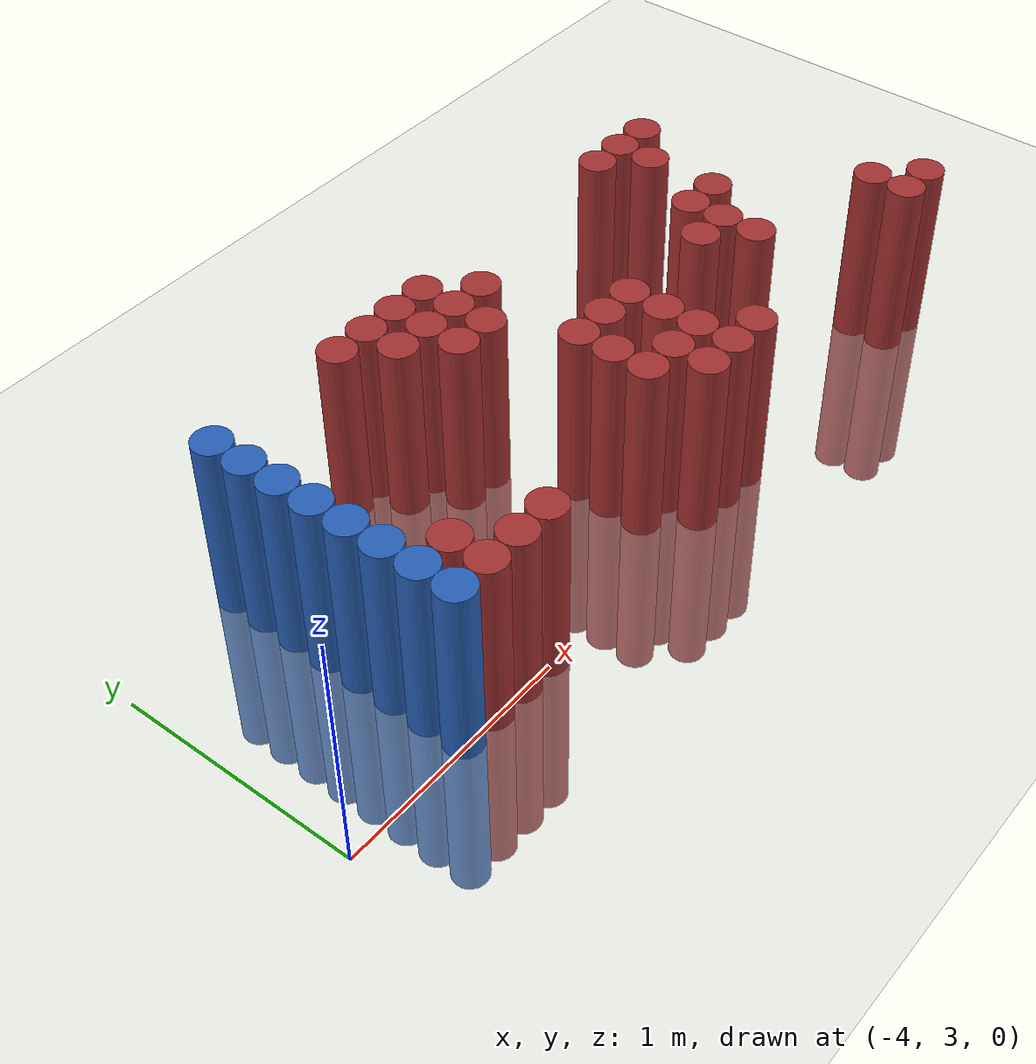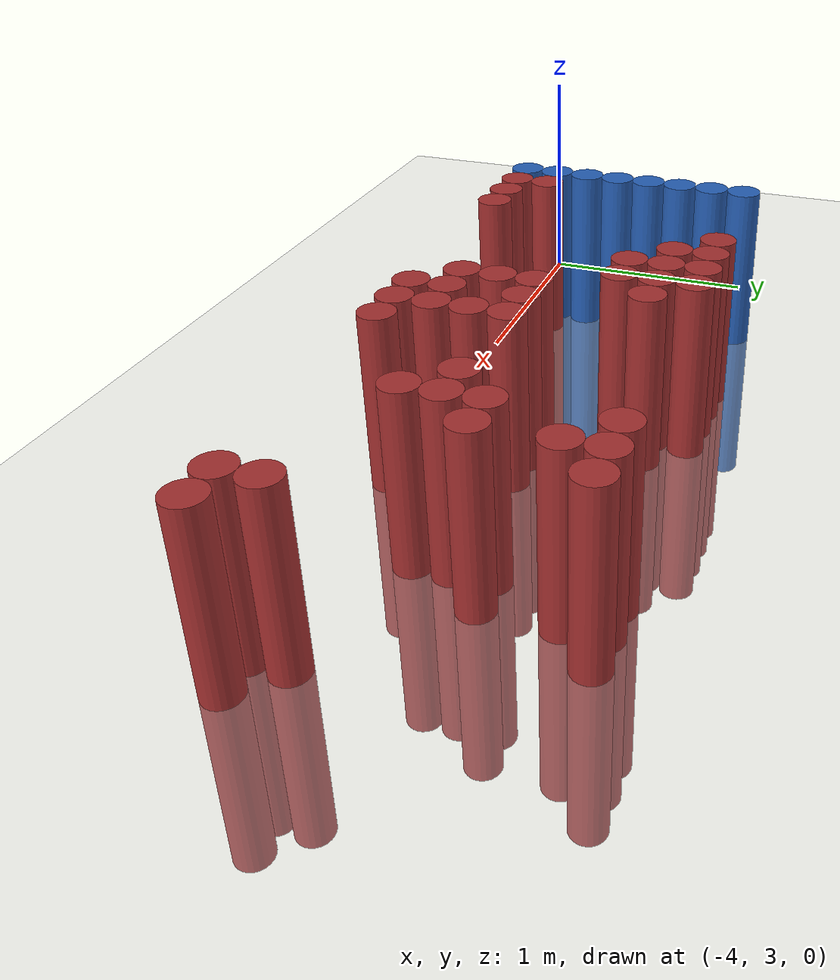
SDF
<sdf version="1.6">
 <world name="default">
  <model name="ground_plane">
   <static>1</static>
   <link name="link">
    <collision name="collision">
     <geometry><plane><normal>0 0 1</normal><size>100 100</size></plane></geometry>
     <surface><friction><ode><mu>100</mu><mu2>50</mu2></ode></friction></surface>
    </collision>
    <visual name="visual">
     <cast_shadows>0</cast_shadows>
     <geometry><plane><normal>0 0 1</normal><size>100 100</size></plane></geometry>
     <material>
      <script><uri>file://media/materials/scripts/gazebo.material</uri><name>Gazebo/Grey</name></script>
     </material>
    </visual>
   </link>
  </model>
  <model name="unit_cylinder_157">
   <static>1</static>
   <pose>-3.425000 3.175000 0.000000 0.000000 0.000000 0.000000</pose>
   <link name="link">
    <inertial>
     <mass>1</mass>
     <inertia><ixx>0.145833</ixx><ixy>0</ixy><ixz>0</ixz><iyy>0.145833</iyy><iyz>0</iyz><izz>0.125</izz></inertia>
    </inertial>
    <collision name="collision">
     <geometry><cylinder><radius>0.075000</radius><length>1.5</length></cylinder></geometry>
    </collision>
    <visual name="visual">
     <geometry><cylinder><radius>0.075000</radius><length>1.5</length></cylinder></geometry>
     <material>
      <ambient>0.152000 0.379000 0.720000 1</ambient>
      <diffuse>0.152000 0.379000 0.720000 1</diffuse>
     </material>
     <material>
      <script><name>Gazebo/Grey</name><uri>file://media/materials/scripts/gazebo.material</uri></script>
     </material>
    </visual>
   </link>
  </model>
  <model name="unit_cylinder_159">
   <static>1</static>
   <pose>-3.425000 3.325000 0.000000 0.000000 0.000000 0.000000</pose>
   <link name="link">
    <inertial>
     <mass>1</mass>
     <inertia><ixx>0.145833</ixx><ixy>0</ixy><ixz>0</ixz><iyy>0.145833</iyy><iyz>0</iyz><izz>0.125</izz></inertia>
    </inertial>
    <collision name="collision">
     <geometry><cylinder><radius>0.075000</radius><length>1.5</length></cylinder></geometry>
    </collision>
    <visual name="visual">
     <geometry><cylinder><radius>0.075000</radius><length>1.5</length></cylinder></geometry>
     <material>
      <ambient>0.152000 0.379000 0.720000 1</ambient>
      <diffuse>0.152000 0.379000 0.720000 1</diffuse>
     </material>
     <material>
      <script><name>Gazebo/Grey</name><uri>file://media/materials/scripts/gazebo.material</uri></script>
     </material>
    </visual>
   </link>
  </model>
  <model name="unit_cylinder_161">
   <static>1</static>
   <pose>-3.425000 3.475000 0.000000 0.000000 0.000000 0.000000</pose>
   <link name="link">
    <inertial>
     <mass>1</mass>
     <inertia><ixx>0.145833</ixx><ixy>0</ixy><ixz>0</ixz><iyy>0.145833</iyy><iyz>0</iyz><izz>0.125</izz></inertia>
    </inertial>
    <collision name="collision">
     <geometry><cylinder><radius>0.075000</radius><length>1.5</length></cylinder></geometry>
    </collision>
    <visual name="visual">
     <geometry><cylinder><radius>0.075000</radius><length>1.5</length></cylinder></geometry>
     <material>
      <ambient>0.152000 0.379000 0.720000 1</ambient>
      <diffuse>0.152000 0.379000 0.720000 1</diffuse>
     </material>
     <material>
      <script><name>Gazebo/Grey</name><uri>file://media/materials/scripts/gazebo.material</uri></script>
     </material>
    </visual>
   </link>
  </model>
  <model name="unit_cylinder_163">
   <static>1</static>
   <pose>-3.425000 3.625000 0.000000 0.000000 0.000000 0.000000</pose>
   <link name="link">
    <inertial>
     <mass>1</mass>
     <inertia><ixx>0.145833</ixx><ixy>0</ixy><ixz>0</ixz><iyy>0.145833</iyy><iyz>0</iyz><izz>0.125</izz></inertia>
    </inertial>
    <collision name="collision">
     <geometry><cylinder><radius>0.075000</radius><length>1.5</length></cylinder></geometry>
    </collision>
    <visual name="visual">
     <geometry><cylinder><radius>0.075000</radius><length>1.5</length></cylinder></geometry>
     <material>
      <ambient>0.152000 0.379000 0.720000 1</ambient>
      <diffuse>0.152000 0.379000 0.720000 1</diffuse>
     </material>
     <material>
      <script><name>Gazebo/Grey</name><uri>file://media/materials/scripts/gazebo.material</uri></script>
     </material>
    </visual>
   </link>
  </model>
  <model name="unit_cylinder_165">
   <static>1</static>
   <pose>-3.425000 3.775000 0.000000 0.000000 0.000000 0.000000</pose>
   <link name="link">
    <inertial>
     <mass>1</mass>
     <inertia><ixx>0.145833</ixx><ixy>0</ixy><ixz>0</ixz><iyy>0.145833</iyy><iyz>0</iyz><izz>0.125</izz></inertia>
    </inertial>
    <collision name="collision">
     <geometry><cylinder><radius>0.075000</radius><length>1.5</length></cylinder></geometry>
    </collision>
    <visual name="visual">
     <geometry><cylinder><radius>0.075000</radius><length>1.5</length></cylinder></geometry>
     <material>
      <ambient>0.152000 0.379000 0.720000 1</ambient>
      <diffuse>0.152000 0.379000 0.720000 1</diffuse>
     </material>
     <material>
      <script><name>Gazebo/Grey</name><uri>file://media/materials/scripts/gazebo.material</uri></script>
     </material>
    </visual>
   </link>
  </model>
  <model name="unit_cylinder_167">
   <static>1</static>
   <pose>-3.425000 3.925000 0.000000 0.000000 0.000000 0.000000</pose>
   <link name="link">
    <inertial>
     <mass>1</mass>
     <inertia><ixx>0.145833</ixx><ixy>0</ixy><ixz>0</ixz><iyy>0.145833</iyy><iyz>0</iyz><izz>0.125</izz></inertia>
    </inertial>
    <collision name="collision">
     <geometry><cylinder><radius>0.075000</radius><length>1.5</length></cylinder></geometry>
    </collision>
    <visual name="visual">
     <geometry><cylinder><radius>0.075000</radius><length>1.5</length></cylinder></geometry>
     <material>
      <ambient>0.152000 0.379000 0.720000 1</ambient>
      <diffuse>0.152000 0.379000 0.720000 1</diffuse>
     </material>
     <material>
      <script><name>Gazebo/Grey</name><uri>file://media/materials/scripts/gazebo.material</uri></script>
     </material>
    </visual>
   </link>
  </model>
  <model name="unit_cylinder_169">
   <static>1</static>
   <pose>-3.425000 4.075000 0.000000 0.000000 0.000000 0.000000</pose>
   <link name="link">
    <inertial>
     <mass>1</mass>
     <inertia><ixx>0.145833</ixx><ixy>0</ixy><ixz>0</ixz><iyy>0.145833</iyy><iyz>0</iyz><izz>0.125</izz></inertia>
    </inertial>
    <collision name="collision">
     <geometry><cylinder><radius>0.075000</radius><length>1.5</length></cylinder></geometry>
    </collision>
    <visual name="visual">
     <geometry><cylinder><radius>0.075000</radius><length>1.5</length></cylinder></geometry>
     <material>
      <ambient>0.152000 0.379000 0.720000 1</ambient>
      <diffuse>0.152000 0.379000 0.720000 1</diffuse>
     </material>
     <material>
      <script><name>Gazebo/Grey</name><uri>file://media/materials/scripts/gazebo.material</uri></script>
     </material>
    </visual>
   </link>
  </model>
  <model name="unit_cylinder_241">
   <static>1</static>
   <pose>-3.425000 3.025000 0.000000 0.000000 0.000000 0.000000</pose>
   <link name="link">
    <inertial>
     <mass>1</mass>
     <inertia><ixx>0.145833</ixx><ixy>0</ixy><ixz>0</ixz><iyy>0.145833</iyy><iyz>0</iyz><izz>0.125</izz></inertia>
    </inertial>
    <collision name="collision">
     <geometry><cylinder><radius>0.075000</radius><length>1.5</length></cylinder></geometry>
    </collision>
    <visual name="visual">
     <geometry><cylinder><radius>0.075000</radius><length>1.5</length></cylinder></geometry>
     <material>
      <ambient>0.152000 0.379000 0.720000 1</ambient>
      <diffuse>0.152000 0.379000 0.720000 1</diffuse>
     </material>
     <material>
      <script><name>Gazebo/Grey</name><uri>file://media/materials/scripts/gazebo.material</uri></script>
     </material>
    </visual>
   </link>
  </model>
  <model name="unit_cylinder_242">
   <static>1</static>
   <pose>-3.425000 3.175000 0.000000 0.000000 0.000000 0.000000</pose>
   <link name="link">
    <inertial>
     <mass>1</mass>
     <inertia><ixx>0.145833</ixx><ixy>0</ixy><ixz>0</ixz><iyy>0.145833</iyy><iyz>0</iyz><izz>0.125</izz></inertia>
    </inertial>
    <collision name="collision">
     <geometry><cylinder><radius>0.075000</radius><length>1.5</length></cylinder></geometry>
    </collision>
    <visual name="visual">
     <geometry><cylinder><radius>0.075000</radius><length>1.5</length></cylinder></geometry>
     <material>
      <ambient>0.152000 0.379000 0.720000 1</ambient>
      <diffuse>0.152000 0.379000 0.720000 1</diffuse>
     </material>
     <material>
      <script><name>Gazebo/Grey</name><uri>file://media/materials/scripts/gazebo.material</uri></script>
     </material>
    </visual>
   </link>
  </model>
  <model name="unit_cylinder_243">
   <static>1</static>
   <pose>-3.425000 3.325000 0.000000 0.000000 0.000000 0.000000</pose>
   <link name="link">
    <inertial>
     <mass>1</mass>
     <inertia><ixx>0.145833</ixx><ixy>0</ixy><ixz>0</ixz><iyy>0.145833</iyy><iyz>0</iyz><izz>0.125</izz></inertia>
    </inertial>
    <collision name="collision">
     <geometry><cylinder><radius>0.075000</radius><length>1.5</length></cylinder></geometry>
    </collision>
    <visual name="visual">
     <geometry><cylinder><radius>0.075000</radius><length>1.5</length></cylinder></geometry>
     <material>
      <ambient>0.152000 0.379000 0.720000 1</ambient>
      <diffuse>0.152000 0.379000 0.720000 1</diffuse>
     </material>
     <material>
      <script><name>Gazebo/Grey</name><uri>file://media/materials/scripts/gazebo.material</uri></script>
     </material>
    </visual>
   </link>
  </model>
  <model name="unit_cylinder_244">
   <static>1</static>
   <pose>-3.425000 3.475000 0.000000 0.000000 0.000000 0.000000</pose>
   <link name="link">
    <inertial>
     <mass>1</mass>
     <inertia><ixx>0.145833</ixx><ixy>0</ixy><ixz>0</ixz><iyy>0.145833</iyy><iyz>0</iyz><izz>0.125</izz></inertia>
    </inertial>
    <collision name="collision">
     <geometry><cylinder><radius>0.075000</radius><length>1.5</length></cylinder></geometry>
    </collision>
    <visual name="visual">
     <geometry><cylinder><radius>0.075000</radius><length>1.5</length></cylinder></geometry>
     <material>
      <ambient>0.152000 0.379000 0.720000 1</ambient>
      <diffuse>0.152000 0.379000 0.720000 1</diffuse>
     </material>
     <material>
      <script><name>Gazebo/Grey</name><uri>file://media/materials/scripts/gazebo.material</uri></script>
     </material>
    </visual>
   </link>
  </model>
  <model name="unit_cylinder_245">
   <static>1</static>
   <pose>-3.425000 3.625000 0.000000 0.000000 0.000000 0.000000</pose>
   <link name="link">
    <inertial>
     <mass>1</mass>
     <inertia><ixx>0.145833</ixx><ixy>0</ixy><ixz>0</ixz><iyy>0.145833</iyy><iyz>0</iyz><izz>0.125</izz></inertia>
    </inertial>
    <collision name="collision">
     <geometry><cylinder><radius>0.075000</radius><length>1.5</length></cylinder></geometry>
    </collision>
    <visual name="visual">
     <geometry><cylinder><radius>0.075000</radius><length>1.5</length></cylinder></geometry>
     <material>
      <ambient>0.152000 0.379000 0.720000 1</ambient>
      <diffuse>0.152000 0.379000 0.720000 1</diffuse>
     </material>
     <material>
      <script><name>Gazebo/Grey</name><uri>file://media/materials/scripts/gazebo.material</uri></script>
     </material>
    </visual>
   </link>
  </model>
  <model name="unit_cylinder_246">
   <static>1</static>
   <pose>-3.425000 3.775000 0.000000 0.000000 0.000000 0.000000</pose>
   <link name="link">
    <inertial>
     <mass>1</mass>
     <inertia><ixx>0.145833</ixx><ixy>0</ixy><ixz>0</ixz><iyy>0.145833</iyy><iyz>0</iyz><izz>0.125</izz></inertia>
    </inertial>
    <collision name="collision">
     <geometry><cylinder><radius>0.075000</radius><length>1.5</length></cylinder></geometry>
    </collision>
    <visual name="visual">
     <geometry><cylinder><radius>0.075000</radius><length>1.5</length></cylinder></geometry>
     <material>
      <ambient>0.152000 0.379000 0.720000 1</ambient>
      <diffuse>0.152000 0.379000 0.720000 1</diffuse>
     </material>
     <material>
      <script><name>Gazebo/Grey</name><uri>file://media/materials/scripts/gazebo.material</uri></script>
     </material>
    </visual>
   </link>
  </model>
  <model name="unit_cylinder_247">
   <static>1</static>
   <pose>-3.425000 3.925000 0.000000 0.000000 0.000000 0.000000</pose>
   <link name="link">
    <inertial>
     <mass>1</mass>
     <inertia><ixx>0.145833</ixx><ixy>0</ixy><ixz>0</ixz><iyy>0.145833</iyy><iyz>0</iyz><izz>0.125</izz></inertia>
    </inertial>
    <collision name="collision">
     <geometry><cylinder><radius>0.075000</radius><length>1.5</length></cylinder></geometry>
    </collision>
    <visual name="visual">
     <geometry><cylinder><radius>0.075000</radius><length>1.5</length></cylinder></geometry>
     <material>
      <ambient>0.152000 0.379000 0.720000 1</ambient>
      <diffuse>0.152000 0.379000 0.720000 1</diffuse>
     </material>
     <material>
      <script><name>Gazebo/Grey</name><uri>file://media/materials/scripts/gazebo.material</uri></script>
     </material>
    </visual>
   </link>
  </model>
  <model name="unit_cylinder_248">
   <static>1</static>
   <pose>-3.425000 4.075000 0.000000 0.000000 0.000000 0.000000</pose>
   <link name="link">
    <inertial>
     <mass>1</mass>
     <inertia><ixx>0.145833</ixx><ixy>0</ixy><ixz>0</ixz><iyy>0.145833</iyy><iyz>0</iyz><izz>0.125</izz></inertia>
    </inertial>
    <collision name="collision">
     <geometry><cylinder><radius>0.075000</radius><length>1.5</length></cylinder></geometry>
    </collision>
    <visual name="visual">
     <geometry><cylinder><radius>0.075000</radius><length>1.5</length></cylinder></geometry>
     <material>
      <ambient>0.152000 0.379000 0.720000 1</ambient>
      <diffuse>0.152000 0.379000 0.720000 1</diffuse>
     </material>
     <material>
      <script><name>Gazebo/Grey</name><uri>file://media/materials/scripts/gazebo.material</uri></script>
     </material>
    </visual>
   </link>
  </model>
  <model name="unit_cylinder_268">
   <static>1</static>
   <pose>-3.275000 3.025000 0.000000 0.000000 0.000000 0.000000</pose>
   <link name="link">
    <inertial>
     <mass>1</mass>
     <inertia><ixx>0.145833</ixx><ixy>0</ixy><ixz>0</ixz><iyy>0.145833</iyy><iyz>0</iyz><izz>0.125</izz></inertia>
    </inertial>
    <collision name="collision">
     <geometry><cylinder><radius>0.075000</radius><length>1.5</length></cylinder></geometry>
    </collision>
    <visual name="visual">
     <geometry><cylinder><radius>0.075000</radius><length>1.5</length></cylinder></geometry>
     <material>
      <ambient>0.648000 0.192000 0.192000 1</ambient>
      <diffuse>0.648000 0.192000 0.192000 1</diffuse>
     </material>
     <material>
      <script><name>Gazebo/Grey</name><uri>file://media/materials/scripts/gazebo.material</uri></script>
     </material>
    </visual>
   </link>
  </model>
  <model name="unit_cylinder_269">
   <static>1</static>
   <pose>-3.275000 3.175000 0.000000 0.000000 0.000000 0.000000</pose>
   <link name="link">
    <inertial>
     <mass>1</mass>
     <inertia><ixx>0.145833</ixx><ixy>0</ixy><ixz>0</ixz><iyy>0.145833</iyy><iyz>0</iyz><izz>0.125</izz></inertia>
    </inertial>
    <collision name="collision">
     <geometry><cylinder><radius>0.075000</radius><length>1.5</length></cylinder></geometry>
    </collision>
    <visual name="visual">
     <geometry><cylinder><radius>0.075000</radius><length>1.5</length></cylinder></geometry>
     <material>
      <ambient>0.648000 0.192000 0.192000 1</ambient>
      <diffuse>0.648000 0.192000 0.192000 1</diffuse>
     </material>
     <material>
      <script><name>Gazebo/Grey</name><uri>file://media/materials/scripts/gazebo.material</uri></script>
     </material>
    </visual>
   </link>
  </model>
  <model name="unit_cylinder_281">
   <static>1</static>
   <pose>-3.125000 3.025000 0.000000 0.000000 0.000000 0.000000</pose>
   <link name="link">
    <inertial>
     <mass>1</mass>
     <inertia><ixx>0.145833</ixx><ixy>0</ixy><ixz>0</ixz><iyy>0.145833</iyy><iyz>0</iyz><izz>0.125</izz></inertia>
    </inertial>
    <collision name="collision">
     <geometry><cylinder><radius>0.075000</radius><length>1.5</length></cylinder></geometry>
    </collision>
    <visual name="visual">
     <geometry><cylinder><radius>0.075000</radius><length>1.5</length></cylinder></geometry>
     <material>
      <ambient>0.648000 0.192000 0.192000 1</ambient>
      <diffuse>0.648000 0.192000 0.192000 1</diffuse>
     </material>
     <material>
      <script><name>Gazebo/Grey</name><uri>file://media/materials/scripts/gazebo.material</uri></script>
     </material>
    </visual>
   </link>
  </model>
  <model name="unit_cylinder_287">
   <static>1</static>
   <pose>-2.975000 3.025000 0.000000 0.000000 0.000000 0.000000</pose>
   <link name="link">
    <inertial>
     <mass>1</mass>
     <inertia><ixx>0.145833</ixx><ixy>0</ixy><ixz>0</ixz><iyy>0.145833</iyy><iyz>0</iyz><izz>0.125</izz></inertia>
    </inertial>
    <collision name="collision">
     <geometry><cylinder><radius>0.075000</radius><length>1.5</length></cylinder></geometry>
    </collision>
    <visual name="visual">
     <geometry><cylinder><radius>0.075000</radius><length>1.5</length></cylinder></geometry>
     <material>
      <ambient>0.648000 0.192000 0.192000 1</ambient>
      <diffuse>0.648000 0.192000 0.192000 1</diffuse>
     </material>
     <material>
      <script><name>Gazebo/Grey</name><uri>file://media/materials/scripts/gazebo.material</uri></script>
     </material>
    </visual>
   </link>
  </model>
  <model name="unit_cylinder_290">
   <static>1</static>
   <pose>-2.825000 4.075000 0.000000 0.000000 0.000000 0.000000</pose>
   <link name="link">
    <inertial>
     <mass>1</mass>
     <inertia><ixx>0.145833</ixx><ixy>0</ixy><ixz>0</ixz><iyy>0.145833</iyy><iyz>0</iyz><izz>0.125</izz></inertia>
    </inertial>
    <collision name="collision">
     <geometry><cylinder><radius>0.075000</radius><length>1.5</length></cylinder></geometry>
    </collision>
    <visual name="visual">
     <geometry><cylinder><radius>0.075000</radius><length>1.5</length></cylinder></geometry>
     <material>
      <ambient>0.648000 0.192000 0.192000 1</ambient>
      <diffuse>0.648000 0.192000 0.192000 1</diffuse>
     </material>
     <material>
      <script><name>Gazebo/Grey</name><uri>file://media/materials/scripts/gazebo.material</uri></script>
     </material>
    </visual>
   </link>
  </model>
  <model name="unit_cylinder_295">
   <static>1</static>
   <pose>-2.675000 3.925000 0.000000 0.000000 0.000000 0.000000</pose>
   <link name="link">
    <inertial>
     <mass>1</mass>
     <inertia><ixx>0.145833</ixx><ixy>0</ixy><ixz>0</ixz><iyy>0.145833</iyy><iyz>0</iyz><izz>0.125</izz></inertia>
    </inertial>
    <collision name="collision">
     <geometry><cylinder><radius>0.075000</radius><length>1.5</length></cylinder></geometry>
    </collision>
    <visual name="visual">
     <geometry><cylinder><radius>0.075000</radius><length>1.5</length></cylinder></geometry>
     <material>
      <ambient>0.648000 0.192000 0.192000 1</ambient>
      <diffuse>0.648000 0.192000 0.192000 1</diffuse>
     </material>
     <material>
      <script><name>Gazebo/Grey</name><uri>file://media/materials/scripts/gazebo.material</uri></script>
     </material>
    </visual>
   </link>
  </model>
  <model name="unit_cylinder_296">
   <static>1</static>
   <pose>-2.675000 4.075000 0.000000 0.000000 0.000000 0.000000</pose>
   <link name="link">
    <inertial>
     <mass>1</mass>
     <inertia><ixx>0.145833</ixx><ixy>0</ixy><ixz>0</ixz><iyy>0.145833</iyy><iyz>0</iyz><izz>0.125</izz></inertia>
    </inertial>
    <collision name="collision">
     <geometry><cylinder><radius>0.075000</radius><length>1.5</length></cylinder></geometry>
    </collision>
    <visual name="visual">
     <geometry><cylinder><radius>0.075000</radius><length>1.5</length></cylinder></geometry>
     <material>
      <ambient>0.648000 0.192000 0.192000 1</ambient>
      <diffuse>0.648000 0.192000 0.192000 1</diffuse>
     </material>
     <material>
      <script><name>Gazebo/Grey</name><uri>file://media/materials/scripts/gazebo.material</uri></script>
     </material>
    </visual>
   </link>
  </model>
  <model name="unit_cylinder_304">
   <static>1</static>
   <pose>-2.525000 3.775000 0.000000 0.000000 0.000000 0.000000</pose>
   <link name="link">
    <inertial>
     <mass>1</mass>
     <inertia><ixx>0.145833</ixx><ixy>0</ixy><ixz>0</ixz><iyy>0.145833</iyy><iyz>0</iyz><izz>0.125</izz></inertia>
    </inertial>
    <collision name="collision">
     <geometry><cylinder><radius>0.075000</radius><length>1.5</length></cylinder></geometry>
    </collision>
    <visual name="visual">
     <geometry><cylinder><radius>0.075000</radius><length>1.5</length></cylinder></geometry>
     <material>
      <ambient>0.648000 0.192000 0.192000 1</ambient>
      <diffuse>0.648000 0.192000 0.192000 1</diffuse>
     </material>
     <material>
      <script><name>Gazebo/Grey</name><uri>file://media/materials/scripts/gazebo.material</uri></script>
     </material>
    </visual>
   </link>
  </model>
  <model name="unit_cylinder_305">
   <static>1</static>
   <pose>-2.525000 3.925000 0.000000 0.000000 0.000000 0.000000</pose>
   <link name="link">
    <inertial>
     <mass>1</mass>
     <inertia><ixx>0.145833</ixx><ixy>0</ixy><ixz>0</ixz><iyy>0.145833</iyy><iyz>0</iyz><izz>0.125</izz></inertia>
    </inertial>
    <collision name="collision">
     <geometry><cylinder><radius>0.075000</radius><length>1.5</length></cylinder></geometry>
    </collision>
    <visual name="visual">
     <geometry><cylinder><radius>0.075000</radius><length>1.5</length></cylinder></geometry>
     <material>
      <ambient>0.648000 0.192000 0.192000 1</ambient>
      <diffuse>0.648000 0.192000 0.192000 1</diffuse>
     </material>
     <material>
      <script><name>Gazebo/Grey</name><uri>file://media/materials/scripts/gazebo.material</uri></script>
     </material>
    </visual>
   </link>
  </model>
  <model name="unit_cylinder_306">
   <static>1</static>
   <pose>-2.525000 4.075000 0.000000 0.000000 0.000000 0.000000</pose>
   <link name="link">
    <inertial>
     <mass>1</mass>
     <inertia><ixx>0.145833</ixx><ixy>0</ixy><ixz>0</ixz><iyy>0.145833</iyy><iyz>0</iyz><izz>0.125</izz></inertia>
    </inertial>
    <collision name="collision">
     <geometry><cylinder><radius>0.075000</radius><length>1.5</length></cylinder></geometry>
    </collision>
    <visual name="visual">
     <geometry><cylinder><radius>0.075000</radius><length>1.5</length></cylinder></geometry>
     <material>
      <ambient>0.648000 0.192000 0.192000 1</ambient>
      <diffuse>0.648000 0.192000 0.192000 1</diffuse>
     </material>
     <material>
      <script><name>Gazebo/Grey</name><uri>file://media/materials/scripts/gazebo.material</uri></script>
     </material>
    </visual>
   </link>
  </model>
  <model name="unit_cylinder_312">
   <static>1</static>
   <pose>-2.375000 3.775000 0.000000 0.000000 0.000000 0.000000</pose>
   <link name="link">
    <inertial>
     <mass>1</mass>
     <inertia><ixx>0.145833</ixx><ixy>0</ixy><ixz>0</ixz><iyy>0.145833</iyy><iyz>0</iyz><izz>0.125</izz></inertia>
    </inertial>
    <collision name="collision">
     <geometry><cylinder><radius>0.075000</radius><length>1.5</length></cylinder></geometry>
    </collision>
    <visual name="visual">
     <geometry><cylinder><radius>0.075000</radius><length>1.5</length></cylinder></geometry>
     <material>
      <ambient>0.648000 0.192000 0.192000 1</ambient>
      <diffuse>0.648000 0.192000 0.192000 1</diffuse>
     </material>
     <material>
      <script><name>Gazebo/Grey</name><uri>file://media/materials/scripts/gazebo.material</uri></script>
     </material>
    </visual>
   </link>
  </model>
  <model name="unit_cylinder_313">
   <static>1</static>
   <pose>-2.375000 3.925000 0.000000 0.000000 0.000000 0.000000</pose>
   <link name="link">
    <inertial>
     <mass>1</mass>
     <inertia><ixx>0.145833</ixx><ixy>0</ixy><ixz>0</ixz><iyy>0.145833</iyy><iyz>0</iyz><izz>0.125</izz></inertia>
    </inertial>
    <collision name="collision">
     <geometry><cylinder><radius>0.075000</radius><length>1.5</length></cylinder></geometry>
    </collision>
    <visual name="visual">
     <geometry><cylinder><radius>0.075000</radius><length>1.5</length></cylinder></geometry>
     <material>
      <ambient>0.648000 0.192000 0.192000 1</ambient>
      <diffuse>0.648000 0.192000 0.192000 1</diffuse>
     </material>
     <material>
      <script><name>Gazebo/Grey</name><uri>file://media/materials/scripts/gazebo.material</uri></script>
     </material>
    </visual>
   </link>
  </model>
  <model name="unit_cylinder_314">
   <static>1</static>
   <pose>-2.375000 4.075000 0.000000 0.000000 0.000000 0.000000</pose>
   <link name="link">
    <inertial>
     <mass>1</mass>
     <inertia><ixx>0.145833</ixx><ixy>0</ixy><ixz>0</ixz><iyy>0.145833</iyy><iyz>0</iyz><izz>0.125</izz></inertia>
    </inertial>
    <collision name="collision">
     <geometry><cylinder><radius>0.075000</radius><length>1.5</length></cylinder></geometry>
    </collision>
    <visual name="visual">
     <geometry><cylinder><radius>0.075000</radius><length>1.5</length></cylinder></geometry>
     <material>
      <ambient>0.648000 0.192000 0.192000 1</ambient>
      <diffuse>0.648000 0.192000 0.192000 1</diffuse>
     </material>
     <material>
      <script><name>Gazebo/Grey</name><uri>file://media/materials/scripts/gazebo.material</uri></script>
     </material>
    </visual>
   </link>
  </model>
  <model name="unit_cylinder_326">
   <static>1</static>
   <pose>-2.225000 3.175000 0.000000 0.000000 0.000000 0.000000</pose>
   <link name="link">
    <inertial>
     <mass>1</mass>
     <inertia><ixx>0.145833</ixx><ixy>0</ixy><ixz>0</ixz><iyy>0.145833</iyy><iyz>0</iyz><izz>0.125</izz></inertia>
    </inertial>
    <collision name="collision">
     <geometry><cylinder><radius>0.075000</radius><length>1.5</length></cylinder></geometry>
    </collision>
    <visual name="visual">
     <geometry><cylinder><radius>0.075000</radius><length>1.5</length></cylinder></geometry>
     <material>
      <ambient>0.648000 0.192000 0.192000 1</ambient>
      <diffuse>0.648000 0.192000 0.192000 1</diffuse>
     </material>
     <material>
      <script><name>Gazebo/Grey</name><uri>file://media/materials/scripts/gazebo.material</uri></script>
     </material>
    </visual>
   </link>
  </model>
  <model name="unit_cylinder_327">
   <static>1</static>
   <pose>-2.225000 3.325000 0.000000 0.000000 0.000000 0.000000</pose>
   <link name="link">
    <inertial>
     <mass>1</mass>
     <inertia><ixx>0.145833</ixx><ixy>0</ixy><ixz>0</ixz><iyy>0.145833</iyy><iyz>0</iyz><izz>0.125</izz></inertia>
    </inertial>
    <collision name="collision">
     <geometry><cylinder><radius>0.075000</radius><length>1.5</length></cylinder></geometry>
    </collision>
    <visual name="visual">
     <geometry><cylinder><radius>0.075000</radius><length>1.5</length></cylinder></geometry>
     <material>
      <ambient>0.648000 0.192000 0.192000 1</ambient>
      <diffuse>0.648000 0.192000 0.192000 1</diffuse>
     </material>
     <material>
      <script><name>Gazebo/Grey</name><uri>file://media/materials/scripts/gazebo.material</uri></script>
     </material>
    </visual>
   </link>
  </model>
  <model name="unit_cylinder_328">
   <static>1</static>
   <pose>-2.225000 3.475000 0.000000 0.000000 0.000000 0.000000</pose>
   <link name="link">
    <inertial>
     <mass>1</mass>
     <inertia><ixx>0.145833</ixx><ixy>0</ixy><ixz>0</ixz><iyy>0.145833</iyy><iyz>0</iyz><izz>0.125</izz></inertia>
    </inertial>
    <collision name="collision">
     <geometry><cylinder><radius>0.075000</radius><length>1.5</length></cylinder></geometry>
    </collision>
    <visual name="visual">
     <geometry><cylinder><radius>0.075000</radius><length>1.5</length></cylinder></geometry>
     <material>
      <ambient>0.648000 0.192000 0.192000 1</ambient>
      <diffuse>0.648000 0.192000 0.192000 1</diffuse>
     </material>
     <material>
      <script><name>Gazebo/Grey</name><uri>file://media/materials/scripts/gazebo.material</uri></script>
     </material>
    </visual>
   </link>
  </model>
  <model name="unit_cylinder_329">
   <static>1</static>
   <pose>-2.225000 3.925000 0.000000 0.000000 0.000000 0.000000</pose>
   <link name="link">
    <inertial>
     <mass>1</mass>
     <inertia><ixx>0.145833</ixx><ixy>0</ixy><ixz>0</ixz><iyy>0.145833</iyy><iyz>0</iyz><izz>0.125</izz></inertia>
    </inertial>
    <collision name="collision">
     <geometry><cylinder><radius>0.075000</radius><length>1.5</length></cylinder></geometry>
    </collision>
    <visual name="visual">
     <geometry><cylinder><radius>0.075000</radius><length>1.5</length></cylinder></geometry>
     <material>
      <ambient>0.648000 0.192000 0.192000 1</ambient>
      <diffuse>0.648000 0.192000 0.192000 1</diffuse>
     </material>
     <material>
      <script><name>Gazebo/Grey</name><uri>file://media/materials/scripts/gazebo.material</uri></script>
     </material>
    </visual>
   </link>
  </model>
  <model name="unit_cylinder_340">
   <static>1</static>
   <pose>-2.075000 3.025000 0.000000 0.000000 0.000000 0.000000</pose>
   <link name="link">
    <inertial>
     <mass>1</mass>
     <inertia><ixx>0.145833</ixx><ixy>0</ixy><ixz>0</ixz><iyy>0.145833</iyy><iyz>0</iyz><izz>0.125</izz></inertia>
    </inertial>
    <collision name="collision">
     <geometry><cylinder><radius>0.075000</radius><length>1.5</length></cylinder></geometry>
    </collision>
    <visual name="visual">
     <geometry><cylinder><radius>0.075000</radius><length>1.5</length></cylinder></geometry>
     <material>
      <ambient>0.648000 0.192000 0.192000 1</ambient>
      <diffuse>0.648000 0.192000 0.192000 1</diffuse>
     </material>
     <material>
      <script><name>Gazebo/Grey</name><uri>file://media/materials/scripts/gazebo.material</uri></script>
     </material>
    </visual>
   </link>
  </model>
  <model name="unit_cylinder_341">
   <static>1</static>
   <pose>-2.075000 3.175000 0.000000 0.000000 0.000000 0.000000</pose>
   <link name="link">
    <inertial>
     <mass>1</mass>
     <inertia><ixx>0.145833</ixx><ixy>0</ixy><ixz>0</ixz><iyy>0.145833</iyy><iyz>0</iyz><izz>0.125</izz></inertia>
    </inertial>
    <collision name="collision">
     <geometry><cylinder><radius>0.075000</radius><length>1.5</length></cylinder></geometry>
    </collision>
    <visual name="visual">
     <geometry><cylinder><radius>0.075000</radius><length>1.5</length></cylinder></geometry>
     <material>
      <ambient>0.648000 0.192000 0.192000 1</ambient>
      <diffuse>0.648000 0.192000 0.192000 1</diffuse>
     </material>
     <material>
      <script><name>Gazebo/Grey</name><uri>file://media/materials/scripts/gazebo.material</uri></script>
     </material>
    </visual>
   </link>
  </model>
  <model name="unit_cylinder_342">
   <static>1</static>
   <pose>-2.075000 3.475000 0.000000 0.000000 0.000000 0.000000</pose>
   <link name="link">
    <inertial>
     <mass>1</mass>
     <inertia><ixx>0.145833</ixx><ixy>0</ixy><ixz>0</ixz><iyy>0.145833</iyy><iyz>0</iyz><izz>0.125</izz></inertia>
    </inertial>
    <collision name="collision">
     <geometry><cylinder><radius>0.075000</radius><length>1.5</length></cylinder></geometry>
    </collision>
    <visual name="visual">
     <geometry><cylinder><radius>0.075000</radius><length>1.5</length></cylinder></geometry>
     <material>
      <ambient>0.648000 0.192000 0.192000 1</ambient>
      <diffuse>0.648000 0.192000 0.192000 1</diffuse>
     </material>
     <material>
      <script><name>Gazebo/Grey</name><uri>file://media/materials/scripts/gazebo.material</uri></script>
     </material>
    </visual>
   </link>
  </model>
  <model name="unit_cylinder_351">
   <static>1</static>
   <pose>-1.925000 3.025000 0.000000 0.000000 0.000000 0.000000</pose>
   <link name="link">
    <inertial>
     <mass>1</mass>
     <inertia><ixx>0.145833</ixx><ixy>0</ixy><ixz>0</ixz><iyy>0.145833</iyy><iyz>0</iyz><izz>0.125</izz></inertia>
    </inertial>
    <collision name="collision">
     <geometry><cylinder><radius>0.075000</radius><length>1.5</length></cylinder></geometry>
    </collision>
    <visual name="visual">
     <geometry><cylinder><radius>0.075000</radius><length>1.5</length></cylinder></geometry>
     <material>
      <ambient>0.648000 0.192000 0.192000 1</ambient>
      <diffuse>0.648000 0.192000 0.192000 1</diffuse>
     </material>
     <material>
      <script><name>Gazebo/Grey</name><uri>file://media/materials/scripts/gazebo.material</uri></script>
     </material>
    </visual>
   </link>
  </model>
  <model name="unit_cylinder_352">
   <static>1</static>
   <pose>-1.925000 3.175000 0.000000 0.000000 0.000000 0.000000</pose>
   <link name="link">
    <inertial>
     <mass>1</mass>
     <inertia><ixx>0.145833</ixx><ixy>0</ixy><ixz>0</ixz><iyy>0.145833</iyy><iyz>0</iyz><izz>0.125</izz></inertia>
    </inertial>
    <collision name="collision">
     <geometry><cylinder><radius>0.075000</radius><length>1.5</length></cylinder></geometry>
    </collision>
    <visual name="visual">
     <geometry><cylinder><radius>0.075000</radius><length>1.5</length></cylinder></geometry>
     <material>
      <ambient>0.648000 0.192000 0.192000 1</ambient>
      <diffuse>0.648000 0.192000 0.192000 1</diffuse>
     </material>
     <material>
      <script><name>Gazebo/Grey</name><uri>file://media/materials/scripts/gazebo.material</uri></script>
     </material>
    </visual>
   </link>
  </model>
  <model name="unit_cylinder_353">
   <static>1</static>
   <pose>-1.925000 3.325000 0.000000 0.000000 0.000000 0.000000</pose>
   <link name="link">
    <inertial>
     <mass>1</mass>
     <inertia><ixx>0.145833</ixx><ixy>0</ixy><ixz>0</ixz><iyy>0.145833</iyy><iyz>0</iyz><izz>0.125</izz></inertia>
    </inertial>
    <collision name="collision">
     <geometry><cylinder><radius>0.075000</radius><length>1.5</length></cylinder></geometry>
    </collision>
    <visual name="visual">
     <geometry><cylinder><radius>0.075000</radius><length>1.5</length></cylinder></geometry>
     <material>
      <ambient>0.648000 0.192000 0.192000 1</ambient>
      <diffuse>0.648000 0.192000 0.192000 1</diffuse>
     </material>
     <material>
      <script><name>Gazebo/Grey</name><uri>file://media/materials/scripts/gazebo.material</uri></script>
     </material>
    </visual>
   </link>
  </model>
  <model name="unit_cylinder_354">
   <static>1</static>
   <pose>-1.925000 3.475000 0.000000 0.000000 0.000000 0.000000</pose>
   <link name="link">
    <inertial>
     <mass>1</mass>
     <inertia><ixx>0.145833</ixx><ixy>0</ixy><ixz>0</ixz><iyy>0.145833</iyy><iyz>0</iyz><izz>0.125</izz></inertia>
    </inertial>
    <collision name="collision">
     <geometry><cylinder><radius>0.075000</radius><length>1.5</length></cylinder></geometry>
    </collision>
    <visual name="visual">
     <geometry><cylinder><radius>0.075000</radius><length>1.5</length></cylinder></geometry>
     <material>
      <ambient>0.648000 0.192000 0.192000 1</ambient>
      <diffuse>0.648000 0.192000 0.192000 1</diffuse>
     </material>
     <material>
      <script><name>Gazebo/Grey</name><uri>file://media/materials/scripts/gazebo.material</uri></script>
     </material>
    </visual>
   </link>
  </model>
  <model name="unit_cylinder_361">
   <static>1</static>
   <pose>-1.775000 3.025000 0.000000 0.000000 0.000000 0.000000</pose>
   <link name="link">
    <inertial>
     <mass>1</mass>
     <inertia><ixx>0.145833</ixx><ixy>0</ixy><ixz>0</ixz><iyy>0.145833</iyy><iyz>0</iyz><izz>0.125</izz></inertia>
    </inertial>
    <collision name="collision">
     <geometry><cylinder><radius>0.075000</radius><length>1.5</length></cylinder></geometry>
    </collision>
    <visual name="visual">
     <geometry><cylinder><radius>0.075000</radius><length>1.5</length></cylinder></geometry>
     <material>
      <ambient>0.648000 0.192000 0.192000 1</ambient>
      <diffuse>0.648000 0.192000 0.192000 1</diffuse>
     </material>
     <material>
      <script><name>Gazebo/Grey</name><uri>file://media/materials/scripts/gazebo.material</uri></script>
     </material>
    </visual>
   </link>
  </model>
  <model name="unit_cylinder_371">
   <static>1</static>
   <pose>-1.475000 3.475000 0.000000 0.000000 0.000000 0.000000</pose>
   <link name="link">
    <inertial>
     <mass>1</mass>
     <inertia><ixx>0.145833</ixx><ixy>0</ixy><ixz>0</ixz><iyy>0.145833</iyy><iyz>0</iyz><izz>0.125</izz></inertia>
    </inertial>
    <collision name="collision">
     <geometry><cylinder><radius>0.075000</radius><length>1.5</length></cylinder></geometry>
    </collision>
    <visual name="visual">
     <geometry><cylinder><radius>0.075000</radius><length>1.5</length></cylinder></geometry>
     <material>
      <ambient>0.648000 0.192000 0.192000 1</ambient>
      <diffuse>0.648000 0.192000 0.192000 1</diffuse>
     </material>
     <material>
      <script><name>Gazebo/Grey</name><uri>file://media/materials/scripts/gazebo.material</uri></script>
     </material>
    </visual>
   </link>
  </model>
  <model name="unit_cylinder_377">
   <static>1</static>
   <pose>-1.325000 3.325000 0.000000 0.000000 0.000000 0.000000</pose>
   <link name="link">
    <inertial>
     <mass>1</mass>
     <inertia><ixx>0.145833</ixx><ixy>0</ixy><ixz>0</ixz><iyy>0.145833</iyy><iyz>0</iyz><izz>0.125</izz></inertia>
    </inertial>
    <collision name="collision">
     <geometry><cylinder><radius>0.075000</radius><length>1.5</length></cylinder></geometry>
    </collision>
    <visual name="visual">
     <geometry><cylinder><radius>0.075000</radius><length>1.5</length></cylinder></geometry>
     <material>
      <ambient>0.648000 0.192000 0.192000 1</ambient>
      <diffuse>0.648000 0.192000 0.192000 1</diffuse>
     </material>
     <material>
      <script><name>Gazebo/Grey</name><uri>file://media/materials/scripts/gazebo.material</uri></script>
     </material>
    </visual>
   </link>
  </model>
  <model name="unit_cylinder_378">
   <static>1</static>
   <pose>-1.325000 3.475000 0.000000 0.000000 0.000000 0.000000</pose>
   <link name="link">
    <inertial>
     <mass>1</mass>
     <inertia><ixx>0.145833</ixx><ixy>0</ixy><ixz>0</ixz><iyy>0.145833</iyy><iyz>0</iyz><izz>0.125</izz></inertia>
    </inertial>
    <collision name="collision">
     <geometry><cylinder><radius>0.075000</radius><length>1.5</length></cylinder></geometry>
    </collision>
    <visual name="visual">
     <geometry><cylinder><radius>0.075000</radius><length>1.5</length></cylinder></geometry>
     <material>
      <ambient>0.648000 0.192000 0.192000 1</ambient>
      <diffuse>0.648000 0.192000 0.192000 1</diffuse>
     </material>
     <material>
      <script><name>Gazebo/Grey</name><uri>file://media/materials/scripts/gazebo.material</uri></script>
     </material>
    </visual>
   </link>
  </model>
  <model name="unit_cylinder_379">
   <static>1</static>
   <pose>-1.325000 3.625000 0.000000 0.000000 0.000000 0.000000</pose>
   <link name="link">
    <inertial>
     <mass>1</mass>
     <inertia><ixx>0.145833</ixx><ixy>0</ixy><ixz>0</ixz><iyy>0.145833</iyy><iyz>0</iyz><izz>0.125</izz></inertia>
    </inertial>
    <collision name="collision">
     <geometry><cylinder><radius>0.075000</radius><length>1.5</length></cylinder></geometry>
    </collision>
    <visual name="visual">
     <geometry><cylinder><radius>0.075000</radius><length>1.5</length></cylinder></geometry>
     <material>
      <ambient>0.648000 0.192000 0.192000 1</ambient>
      <diffuse>0.648000 0.192000 0.192000 1</diffuse>
     </material>
     <material>
      <script><name>Gazebo/Grey</name><uri>file://media/materials/scripts/gazebo.material</uri></script>
     </material>
    </visual>
   </link>
  </model>
  <model name="unit_cylinder_380">
   <static>1</static>
   <pose>-1.325000 4.075000 0.000000 0.000000 0.000000 0.000000</pose>
   <link name="link">
    <inertial>
     <mass>1</mass>
     <inertia><ixx>0.145833</ixx><ixy>0</ixy><ixz>0</ixz><iyy>0.145833</iyy><iyz>0</iyz><izz>0.125</izz></inertia>
    </inertial>
    <collision name="collision">
     <geometry><cylinder><radius>0.075000</radius><length>1.5</length></cylinder></geometry>
    </collision>
    <visual name="visual">
     <geometry><cylinder><radius>0.075000</radius><length>1.5</length></cylinder></geometry>
     <material>
      <ambient>0.648000 0.192000 0.192000 1</ambient>
      <diffuse>0.648000 0.192000 0.192000 1</diffuse>
     </material>
     <material>
      <script><name>Gazebo/Grey</name><uri>file://media/materials/scripts/gazebo.material</uri></script>
     </material>
    </visual>
   </link>
  </model>
  <model name="unit_cylinder_386">
   <static>1</static>
   <pose>-1.175000 3.625000 0.000000 0.000000 0.000000 0.000000</pose>
   <link name="link">
    <inertial>
     <mass>1</mass>
     <inertia><ixx>0.145833</ixx><ixy>0</ixy><ixz>0</ixz><iyy>0.145833</iyy><iyz>0</iyz><izz>0.125</izz></inertia>
    </inertial>
    <collision name="collision">
     <geometry><cylinder><radius>0.075000</radius><length>1.5</length></cylinder></geometry>
    </collision>
    <visual name="visual">
     <geometry><cylinder><radius>0.075000</radius><length>1.5</length></cylinder></geometry>
     <material>
      <ambient>0.648000 0.192000 0.192000 1</ambient>
      <diffuse>0.648000 0.192000 0.192000 1</diffuse>
     </material>
     <material>
      <script><name>Gazebo/Grey</name><uri>file://media/materials/scripts/gazebo.material</uri></script>
     </material>
    </visual>
   </link>
  </model>
  <model name="unit_cylinder_387">
   <static>1</static>
   <pose>-1.175000 3.925000 0.000000 0.000000 0.000000 0.000000</pose>
   <link name="link">
    <inertial>
     <mass>1</mass>
     <inertia><ixx>0.145833</ixx><ixy>0</ixy><ixz>0</ixz><iyy>0.145833</iyy><iyz>0</iyz><izz>0.125</izz></inertia>
    </inertial>
    <collision name="collision">
     <geometry><cylinder><radius>0.075000</radius><length>1.5</length></cylinder></geometry>
    </collision>
    <visual name="visual">
     <geometry><cylinder><radius>0.075000</radius><length>1.5</length></cylinder></geometry>
     <material>
      <ambient>0.648000 0.192000 0.192000 1</ambient>
      <diffuse>0.648000 0.192000 0.192000 1</diffuse>
     </material>
     <material>
      <script><name>Gazebo/Grey</name><uri>file://media/materials/scripts/gazebo.material</uri></script>
     </material>
    </visual>
   </link>
  </model>
  <model name="unit_cylinder_388">
   <static>1</static>
   <pose>-1.175000 4.075000 0.000000 0.000000 0.000000 0.000000</pose>
   <link name="link">
    <inertial>
     <mass>1</mass>
     <inertia><ixx>0.145833</ixx><ixy>0</ixy><ixz>0</ixz><iyy>0.145833</iyy><iyz>0</iyz><izz>0.125</izz></inertia>
    </inertial>
    <collision name="collision">
     <geometry><cylinder><radius>0.075000</radius><length>1.5</length></cylinder></geometry>
    </collision>
    <visual name="visual">
     <geometry><cylinder><radius>0.075000</radius><length>1.5</length></cylinder></geometry>
     <material>
      <ambient>0.648000 0.192000 0.192000 1</ambient>
      <diffuse>0.648000 0.192000 0.192000 1</diffuse>
     </material>
     <material>
      <script><name>Gazebo/Grey</name><uri>file://media/materials/scripts/gazebo.material</uri></script>
     </material>
    </visual>
   </link>
  </model>
  <model name="unit_cylinder_391">
   <static>1</static>
   <pose>-1.025000 4.075000 0.000000 0.000000 0.000000 0.000000</pose>
   <link name="link">
    <inertial>
     <mass>1</mass>
     <inertia><ixx>0.145833</ixx><ixy>0</ixy><ixz>0</ixz><iyy>0.145833</iyy><iyz>0</iyz><izz>0.125</izz></inertia>
    </inertial>
    <collision name="collision">
     <geometry><cylinder><radius>0.075000</radius><length>1.5</length></cylinder></geometry>
    </collision>
    <visual name="visual">
     <geometry><cylinder><radius>0.075000</radius><length>1.5</length></cylinder></geometry>
     <material>
      <ambient>0.648000 0.192000 0.192000 1</ambient>
      <diffuse>0.648000 0.192000 0.192000 1</diffuse>
     </material>
     <material>
      <script><name>Gazebo/Grey</name><uri>file://media/materials/scripts/gazebo.material</uri></script>
     </material>
    </visual>
   </link>
  </model>
  <model name="unit_cylinder_392">
   <static>1</static>
   <pose>-0.725000 3.025000 0.000000 0.000000 0.000000 0.000000</pose>
   <link name="link">
    <inertial>
     <mass>1</mass>
     <inertia><ixx>0.145833</ixx><ixy>0</ixy><ixz>0</ixz><iyy>0.145833</iyy><iyz>0</iyz><izz>0.125</izz></inertia>
    </inertial>
    <collision name="collision">
     <geometry><cylinder><radius>0.075000</radius><length>1.5</length></cylinder></geometry>
    </collision>
    <visual name="visual">
     <geometry><cylinder><radius>0.075000</radius><length>1.5</length></cylinder></geometry>
     <material>
      <ambient>0.648000 0.192000 0.192000 1</ambient>
      <diffuse>0.648000 0.192000 0.192000 1</diffuse>
     </material>
     <material>
      <script><name>Gazebo/Grey</name><uri>file://media/materials/scripts/gazebo.material</uri></script>
     </material>
    </visual>
   </link>
  </model>
  <model name="unit_cylinder_393">
   <static>1</static>
   <pose>-0.725000 3.175000 0.000000 0.000000 0.000000 0.000000</pose>
   <link name="link">
    <inertial>
     <mass>1</mass>
     <inertia><ixx>0.145833</ixx><ixy>0</ixy><ixz>0</ixz><iyy>0.145833</iyy><iyz>0</iyz><izz>0.125</izz></inertia>
    </inertial>
    <collision name="collision">
     <geometry><cylinder><radius>0.075000</radius><length>1.5</length></cylinder></geometry>
    </collision>
    <visual name="visual">
     <geometry><cylinder><radius>0.075000</radius><length>1.5</length></cylinder></geometry>
     <material>
      <ambient>0.648000 0.192000 0.192000 1</ambient>
      <diffuse>0.648000 0.192000 0.192000 1</diffuse>
     </material>
     <material>
      <script><name>Gazebo/Grey</name><uri>file://media/materials/scripts/gazebo.material</uri></script>
     </material>
    </visual>
   </link>
  </model>
  <model name="unit_cylinder_395">
   <static>1</static>
   <pose>-0.575000 3.025000 0.000000 0.000000 0.000000 0.000000</pose>
   <link name="link">
    <inertial>
     <mass>1</mass>
     <inertia><ixx>0.145833</ixx><ixy>0</ixy><ixz>0</ixz><iyy>0.145833</iyy><iyz>0</iyz><izz>0.125</izz></inertia>
    </inertial>
    <collision name="collision">
     <geometry><cylinder><radius>0.075000</radius><length>1.5</length></cylinder></geometry>
    </collision>
    <visual name="visual">
     <geometry><cylinder><radius>0.075000</radius><length>1.5</length></cylinder></geometry>
     <material>
      <ambient>0.648000 0.192000 0.192000 1</ambient>
      <diffuse>0.648000 0.192000 0.192000 1</diffuse>
     </material>
     <material>
      <script><name>Gazebo/Grey</name><uri>file://media/materials/scripts/gazebo.material</uri></script>
     </material>
    </visual>
   </link>
  </model>
 </world>
</sdf>
